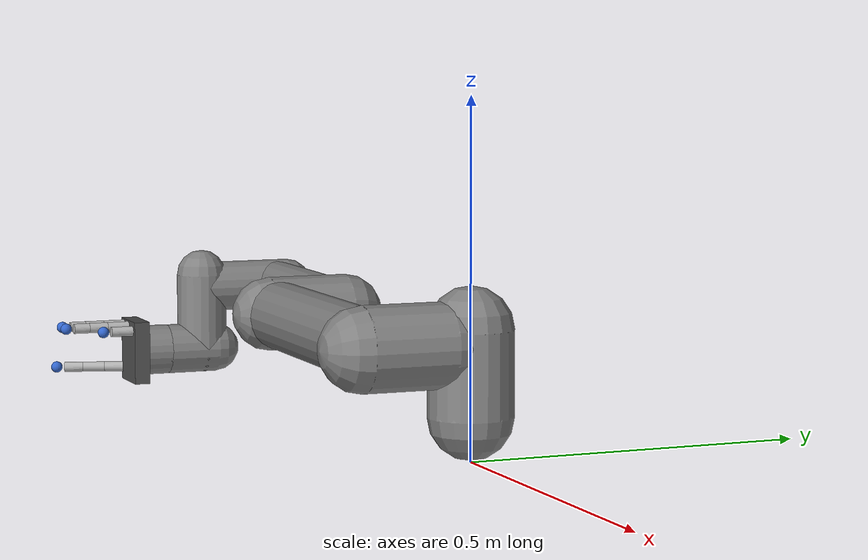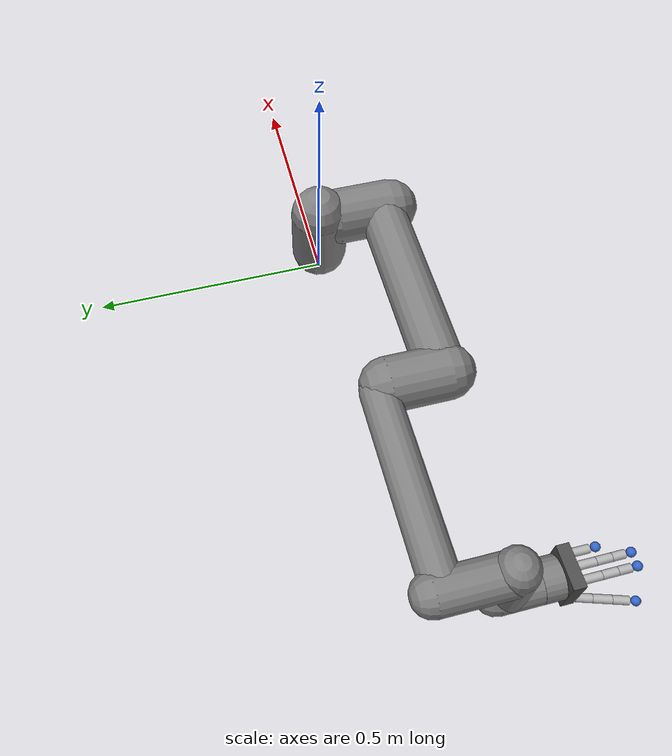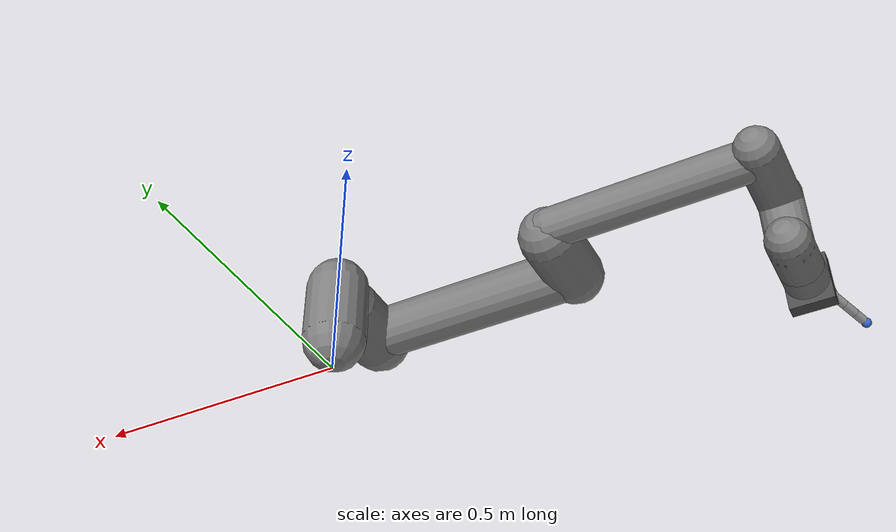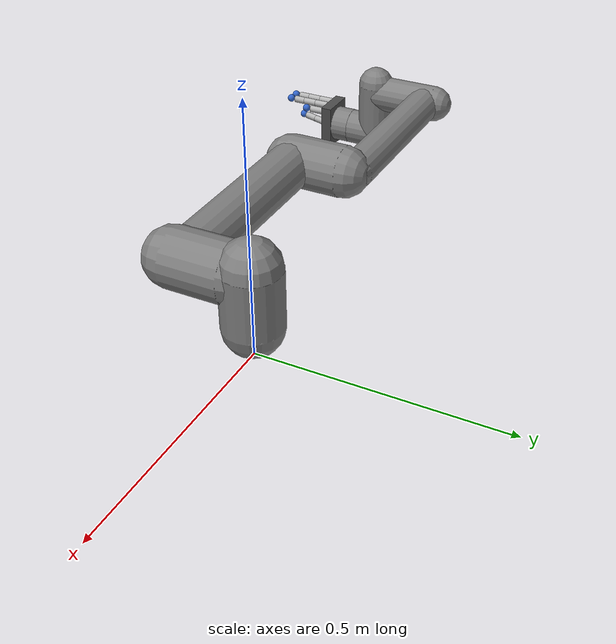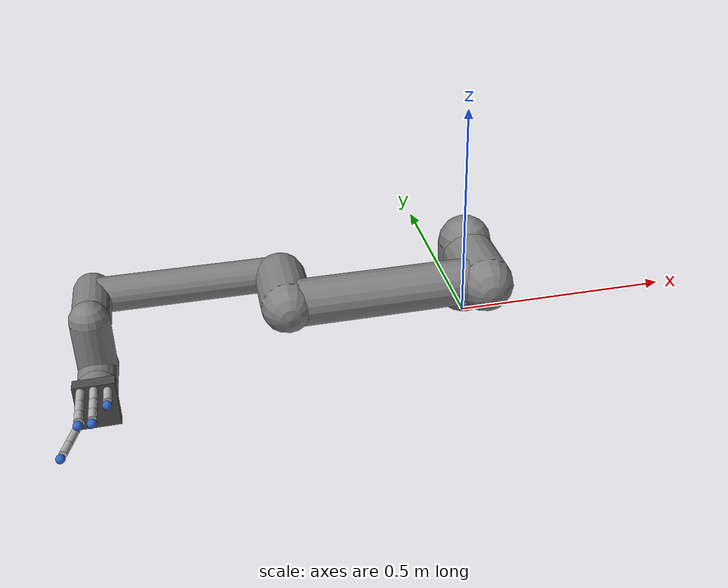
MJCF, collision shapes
<mujoco model="ur5e_with_hand">
  <compiler angle="radian" meshdir="../../ur5e/meshes/assets" autolimits="true"/>

  <option integrator="implicitfast"/>

  <default>
    <default class="ur5e">
      <material specular="0.5" shininess="0.25"/>
      <joint axis="0 1 0" range="-6.28319 6.28319" armature="0.1"/>
      <general gaintype="fixed" biastype="affine" ctrlrange="-6.2831 6.2831" gainprm="2000" biasprm="0 -2000 -400"
        forcerange="-150 150"/>
      <default class="size3">
        <default class="size3_limited">
          <joint range="-3.1415 3.1415"/>
          <general ctrlrange="-3.1415 3.1415"/>
        </default>
      </default>
      <default class="size1">
        <general gainprm="500" biasprm="0 -500 -100" forcerange="-28 28"/>
      </default>
      <default class="hand_size1">
        <general gainprm="500" biasprm="0 -500 -100" forcerange="-5 5"/>
      </default>
      <default class="visual">
        <geom type="mesh" contype="0" conaffinity="0" group="2"/>
      </default>
      <default class="collision">
        <geom type="capsule" group="3"/>
        <default class="eef_collision">
          <geom type="cylinder"/>
        </default>
      </default>
      <site size="0.001" rgba="0.5 0.5 0.5 0.3" group="4"/>
    </default>
  </default>

  <asset>
    <material class="ur5e" name="black" rgba="0.033 0.033 0.033 1"/>
    <material class="ur5e" name="jointgray" rgba="0.278 0.278 0.278 1"/>
    <material class="ur5e" name="linkgray" rgba="0.82 0.82 0.82 1"/>
    <material class="ur5e" name="urblue" rgba="0.49 0.678 0.8 1"/>

    <mesh file="base_0.obj"/>
    <mesh file="base_1.obj"/>
    <mesh file="shoulder_0.obj"/>
    <mesh file="shoulder_1.obj"/>
    <mesh file="shoulder_2.obj"/>
    <mesh file="upperarm_0.obj"/>
    <mesh file="upperarm_1.obj"/>
    <mesh file="upperarm_2.obj"/>
    <mesh file="upperarm_3.obj"/>
    <mesh file="forearm_0.obj"/>
    <mesh file="forearm_1.obj"/>
    <mesh file="forearm_2.obj"/>
    <mesh file="forearm_3.obj"/>
    <mesh file="wrist1_0.obj"/>
    <mesh file="wrist1_1.obj"/>
    <mesh file="wrist1_2.obj"/>
    <mesh file="wrist2_0.obj"/>
    <mesh file="wrist2_1.obj"/>
    <mesh file="wrist2_2.obj"/>
    <mesh file="wrist3.obj"/>
  </asset>

  <worldbody>
    <light name="spotlight" mode="targetbodycom" target="wrist_2_link" pos="0 -1 2"/>
    <body name="base" quat="0 0 0 -1" childclass="ur5e">
      <inertial mass="4.0" pos="0 0 0" diaginertia="0.00443333156 0.00443333156 0.0072"/>
      <geom mesh="base_0" material="black" class="visual"/>
      <geom mesh="base_1" material="jointgray" class="visual"/>
      <body name="shoulder_link" pos="0 0 0.1625">
        <inertial mass="3.761" pos="0 0.00193 -0.02561"
          quat="0.608777794 -0.3650976449 -0.20206706 -0.6747312135"
          diaginertia="0.0060247758 0.0070003049 0.0070307893"/>
        <joint name="shoulder_pan_joint" class="size3" axis="0 0 1"/>
        <geom mesh="shoulder_0" material="urblue" class="visual"/>
        <geom mesh="shoulder_1" material="black" class="visual"/>
        <geom mesh="shoulder_2" material="jointgray" class="visual"/>
        <geom class="collision" size="0.06 0.06" pos="0 0 -0.04"/>
        <body name="upper_arm_link" pos="0 0.138 0" quat="1 0 1 0">
          <inertial mass="8.058" pos="0 -0.02464 0.2125"
            quat="0.00046071 0.707046746 0.0004482457 -0.7071665191"
            diaginertia="0.0150588408 0.3324720678 0.3338808715"/>
          <joint name="shoulder_lift_joint" class="size3"/>
          <geom mesh="upperarm_0" material="linkgray" class="visual"/>
          <geom mesh="upperarm_1" material="black" class="visual"/>
          <geom mesh="upperarm_2" material="jointgray" class="visual"/>
          <geom mesh="upperarm_3" material="urblue" class="visual"/>
          <geom class="collision" pos="0 -0.04 0" quat="1 1 0 0" size="0.06 0.06"/>
          <geom class="collision" size="0.05 0.2" pos="0 0 0.2"/>
          <body name="forearm_link" pos="0 -0.131 0.425">
            <inertial mass="2.846" pos="0 0.0195 0.2422"
              quat="0.0150870604 0.7068818794 0.00206471 -0.707167679"
              diaginertia="0.0039710289 0.0785102224 0.0787927087"/>
            <joint name="elbow_joint" class="size3_limited"/>
            <geom mesh="forearm_0" material="urblue" class="visual"/>
            <geom mesh="forearm_1" material="linkgray" class="visual"/>
            <geom mesh="forearm_2" material="black" class="visual"/>
            <geom mesh="forearm_3" material="jointgray" class="visual"/>
            <geom class="collision" pos="0 0.08 0" quat="1 1 0 0" size="0.055 0.06"/>
            <geom class="collision" size="0.038 0.19" pos="0 0 0.2"/>
            <body name="wrist_1_link" pos="0 0 0.3922" quat="1 0 1 0">
              <inertial mass="1.37" pos="0 0.1245 0.01634"
                quat="0.6828946703 0.1899084013 -0.6756110657 -0.2028283913"
                diaginertia="0.0011986756 0.0014236274 0.001655017"/>
              <joint name="wrist_1_joint" class="size1"/>
              <geom mesh="wrist1_0" material="black" class="visual"/>
              <geom mesh="wrist1_1" material="urblue" class="visual"/>
              <geom mesh="wrist1_2" material="jointgray" class="visual"/>
              <geom class="collision" pos="0 0.05 0" quat="1 1 0 0" size="0.04 0.07"/>
              <body name="wrist_2_link" pos="0 0.1263 0">
                <inertial mass="1.3" pos="0 0.01634 0.0979"
                  quat="0.4440672236 -0.5457388754 -0.4746515935 0.528847091"
                  diaginertia="0.0009581397 0.0012860663 0.001356374"/>
                <joint name="wrist_2_joint" axis="0 0 1" class="size1"/>
                <geom mesh="wrist2_0" material="black" class="visual"/>
                <geom mesh="wrist2_1" material="urblue" class="visual"/>
                <geom mesh="wrist2_2" material="jointgray" class="visual"/>
                <geom class="collision" size="0.04 0.06" pos="0 0 0.04"/>
                <geom class="collision" pos="0 0.02 0.1" quat="1 1 0 0" size="0.04 0.04"/>
                <body name="wrist_3_link" pos="0 0 0.0997">
                  <inertial mass="0.365" pos="0 0.098441 0"
                    quat="0.7117858849 -0.702264837 -0.010374384 -0.0087934623"
                    diaginertia="0.000186938 0.0001890692 0.0002575728"/>
                  <joint name="wrist_3_joint" class="size1"/>
                  <geom material="linkgray" mesh="wrist3" class="visual"/>
                  <geom class="eef_collision" pos="0 0.08 0" quat="1 1 0 0" size="0.04 0.02"/>
                  <site name="attachment_site" pos="0 0.0996 0" quat="-1 1 0 0"/>
                  <!-- Hand attached at attachment_site -->
                  <body name="hand_base" pos="0 0.0996 0" quat="-1 1 0 0">
                    <inertial mass="0.3" pos="0 0 0.0125" diaginertia="0.0001 0.0001 0.0001"/>
                    <geom size="0.04 0.05 0.0125" pos="0 0 0.0125" type="box" rgba="0.3 0.3 0.3 1" contype="0" conaffinity="0"/>
                    <body name="thumb_cmc_aa_link" pos="-0.035 -0.03 0.025" quat="0.988771 0 -0.149438 0">
                      <inertial pos="0 0 0.015" mass="0.02" diaginertia="1e-06 1e-06 1e-07"/>
                      <joint name="thumb_cmc_aa" pos="0 0 0" axis="1 0 0" range="-1.5708 1.5708" damping="0.01" frictionloss="0.01"/>
                      <geom size="0.008 0.015" pos="0 0 0.015" type="cylinder" rgba="0.7 0.7 0.7 1" contype="0" conaffinity="0"/>
                      <body name="thumb_cmc_fe_link" pos="0 0 0.03">
                        <inertial pos="0 0 0.0175" mass="0.02" diaginertia="1e-06 1e-06 1e-07"/>
                        <joint name="thumb_cmc_fe" pos="0 0 0" axis="0 1 0" range="-1.5708 1.5708" damping="0.01" frictionloss="0.01"/>
                        <geom size="0.008 0.0175" pos="0 0 0.0175" type="cylinder" rgba="0.7 0.7 0.7 1" contype="0" conaffinity="0"/>
                        <body name="thumb_mcp_fe_link" pos="0 0 0.035">
                          <inertial pos="0 0 0.0241667" mass="0.03" diaginertia="6.14167e-06 6.14167e-06 2e-07"/>
                          <joint name="thumb_mcp_fe" pos="0 0 0" axis="1 0 0" range="-1.5708 1.5708" damping="0.01" frictionloss="0.01"/>
                          <geom size="0.008 0.015" pos="0 0 0.015" type="cylinder" rgba="0.7 0.7 0.7 1" contype="0" conaffinity="0"/>
                          <geom size="0.009" pos="0 0 0.0425" rgba="0.2 0.4 0.8 1" contype="0" conaffinity="0"/>
                        </body>
                      </body>
                    </body>
                    <body name="index_mcp_aa_link" pos="-0.025 0.04 0.025">
                      <inertial pos="0 0 0.0175" mass="0.02" diaginertia="1e-06 1e-06 1e-07"/>
                      <joint name="index_mcp_aa" pos="0 0 0" axis="1 0 0" range="-1.5708 1.5708" damping="0.01" frictionloss="0.01"/>
                      <geom size="0.008 0.0175" pos="0 0 0.0175" type="cylinder" rgba="0.7 0.7 0.7 1" contype="0" conaffinity="0"/>
                      <body name="index_mcp_fe_link" pos="0 0 0.035">
                        <inertial pos="0 0 0.015" mass="0.02" diaginertia="1e-06 1e-06 1e-07"/>
                        <joint name="index_mcp_fe" pos="0 0 0" axis="1 0 0" range="-1.5708 1.5708" damping="0.01" frictionloss="0.01"/>
                        <geom size="0.008 0.015" pos="0 0 0.015" type="cylinder" rgba="0.7 0.7 0.7 1" contype="0" conaffinity="0"/>
                        <body name="index_dip_fe_link" pos="0 0 0.03">
                          <inertial pos="0 0 0.0208333" mass="0.03" diaginertia="5.26667e-06 5.26667e-06 2e-07"/>
                          <joint name="index_dip_fe" pos="0 0 0" axis="1 0 0" range="-1.5708 1.5708" damping="0.01" frictionloss="0.01"/>
                          <geom size="0.008 0.0125" pos="0 0 0.0125" type="cylinder" rgba="0.7 0.7 0.7 1" contype="0" conaffinity="0"/>
                          <geom size="0.009" pos="0 0 0.0375" rgba="0.2 0.4 0.8 1" contype="0" conaffinity="0"/>
                        </body>
                      </body>
                    </body>
                    <body name="middle_mcp_aa_link" pos="0 0.04 0.025">
                      <inertial pos="0 0 0.0175" mass="0.02" diaginertia="1e-06 1e-06 1e-07"/>
                      <joint name="middle_mcp_aa" pos="0 0 0" axis="1 0 0" range="-1.5708 1.5708" damping="0.01" frictionloss="0.01"/>
                      <geom size="0.008 0.0175" pos="0 0 0.0175" type="cylinder" rgba="0.7 0.7 0.7 1" contype="0" conaffinity="0"/>
                      <body name="middle_mcp_fe_link" pos="0 0 0.035">
                        <inertial pos="0 0 0.015" mass="0.02" diaginertia="1e-06 1e-06 1e-07"/>
                        <joint name="middle_mcp_fe" pos="0 0 0" axis="1 0 0" range="-1.5708 1.5708" damping="0.01" frictionloss="0.01"/>
                        <geom size="0.008 0.015" pos="0 0 0.015" type="cylinder" rgba="0.7 0.7 0.7 1" contype="0" conaffinity="0"/>
                        <body name="middle_dip_fe_link" pos="0 0 0.03">
                          <inertial pos="0 0 0.0208333" mass="0.03" diaginertia="5.26667e-06 5.26667e-06 2e-07"/>
                          <joint name="middle_dip_fe" pos="0 0 0" axis="1 0 0" range="-1.5708 1.5708" damping="0.01" frictionloss="0.01"/>
                          <geom size="0.008 0.0125" pos="0 0 0.0125" type="cylinder" rgba="0.7 0.7 0.7 1" contype="0" conaffinity="0"/>
                          <geom size="0.009" pos="0 0 0.0375" rgba="0.2 0.4 0.8 1" contype="0" conaffinity="0"/>
                        </body>
                      </body>
                    </body>
                    <body name="ring_mcp_fe_link" pos="0.025 0.035 0.025">
                      <inertial pos="0 0 0.0275" mass="0.03" diaginertia="7.1e-06 7.1e-06 2e-07"/>
                      <joint name="ring_mcp_fe" pos="0 0 0" axis="1 0 0" range="-1.5708 1.5708" damping="0.01" frictionloss="0.01"/>
                      <geom size="0.008 0.0175" pos="0 0 0.0175" type="cylinder" rgba="0.7 0.7 0.7 1" contype="0" conaffinity="0"/>
                      <geom size="0.009" pos="0 0 0.0475" rgba="0.2 0.4 0.8 1" contype="0" conaffinity="0"/>
                    </body>
                  </body>
                </body>
              </body>
            </body>
          </body>
        </body>
      </body>
    </body>
  </worldbody>

  <actuator>
    <general class="size3" name="shoulder_pan" joint="shoulder_pan_joint"/>
    <general class="size3" name="shoulder_lift" joint="shoulder_lift_joint"/>
    <general class="size3_limited" name="elbow" joint="elbow_joint"/>
    <general class="size1" name="wrist_1" joint="wrist_1_joint"/>
    <general class="size1" name="wrist_2" joint="wrist_2_joint"/>
    <general class="size1" name="wrist_3" joint="wrist_3_joint"/>
    <general class="hand_size1" name="thumb_cmc_aa"   joint="thumb_cmc_aa"/>
    <general class="hand_size1" name="thumb_cmc_fe"   joint="thumb_cmc_fe"/>
    <general class="hand_size1" name="thumb_mcp_fe"   joint="thumb_mcp_fe"/>
    <general class="hand_size1" name="index_mcp_aa"   joint="index_mcp_aa"/>
    <general class="hand_size1" name="index_mcp_fe"   joint="index_mcp_fe"/>
    <general class="hand_size1" name="index_dip_fe"   joint="index_dip_fe"/>
    <general class="hand_size1" name="middle_mcp_aa"  joint="middle_mcp_aa"/>
    <general class="hand_size1" name="middle_mcp_fe"  joint="middle_mcp_fe"/>
    <general class="hand_size1" name="middle_dip_fe"  joint="middle_dip_fe"/>
    <general class="hand_size1" name="ring_mcp_fe"    joint="ring_mcp_fe"/>
  </actuator>

  <keyframe>
    <key name="home" qpos="-1.5708 -1.5708 1.5708 -1.5708 -1.5708 0 0 0 0 0 0 0 0 0 0 0"
                     ctrl="-1.5708 -1.5708 1.5708 -1.5708 -1.5708 0 0 0 0 0 0 0 0 0 0 0"/>
  </keyframe>
</mujoco>
